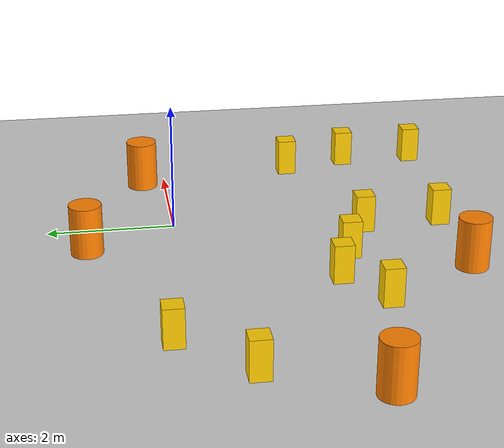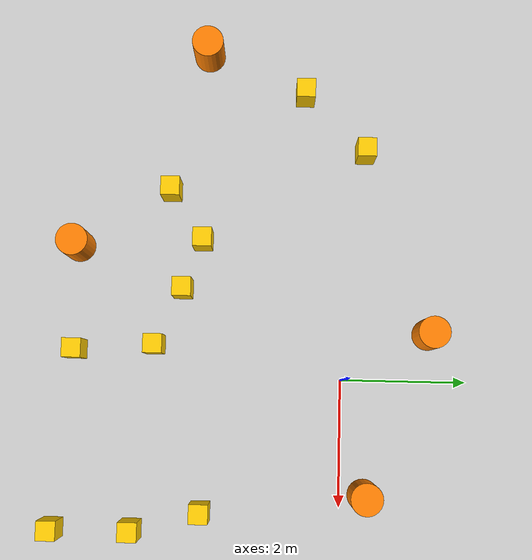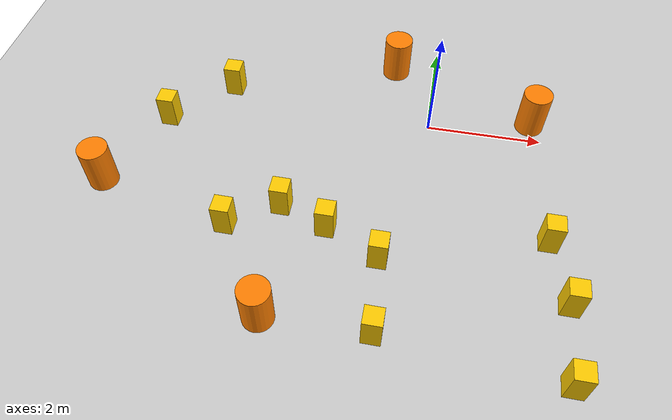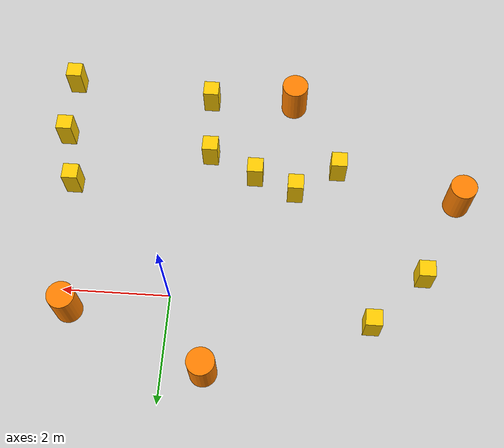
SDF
<sdf version='1.7'>
  <world name='default'>

    <plugin filename="gz-sim-physics-system" name="gz::sim::systems::Physics"/>
    <plugin filename="gz-sim-user-commands-system" name="gz::sim::systems::UserCommands"/>
    <plugin filename="gz-sim-scene-broadcaster-system" name="gz::sim::systems::SceneBroadcaster"/>
    <plugin filename="gz-sim-sensors-system" name="gz::sim::systems::Sensors">
      <render_engine>ogre2</render_engine>
    </plugin>

    <light name='sun' type='directional'>
      <cast_shadows>1</cast_shadows>
      <pose>0 0 10 0 0 0</pose>
      <diffuse>0.8 0.8 0.8 1</diffuse>
      <specular>0.2 0.2 0.2 1</specular>
      <attenuation>
        <range>1000</range>
        <constant>0.9</constant>
        <linear>0.01</linear>
        <quadratic>0.001</quadratic>
      </attenuation>
      <direction>-0.5 0.1 -0.9</direction>
    </light>

    <model name='ground_plane'>
      <static>1</static>
      <link name='link'>
        <collision name='collision'>
          <geometry>
            <plane>
              <normal>0 0 1</normal>
              <size>100 100</size>
            </plane>
          </geometry>
          <surface>
            <friction>
              <ode><mu>100</mu><mu2>50</mu2></ode>
            </friction>
          </surface>
        </collision>
        <visual name='visual'>
          <cast_shadows>0</cast_shadows>
          <geometry>
            <plane>
              <normal>0 0 1</normal>
              <size>100 100</size>
            </plane>
          </geometry>
          <material>
            <ambient>0.8 0.8 0.8 1</ambient>
            <diffuse>0.8 0.8 0.8 1</diffuse>
            <specular>0.0 0.0 0.0 1</specular>
          </material>
        </visual>
      </link>
    </model>

    <!-- Barrels as cylinders -->
    <model name='barrel_0'>
      <static>1</static>
      <pose>-0.756237 1.39226 0.4 0 0 0</pose>
      <link name='link'>
        <collision name='collision'>
          <geometry><cylinder><radius>0.25</radius><length>0.8</length></cylinder></geometry>
        </collision>
        <visual name='visual'>
          <geometry><cylinder><radius>0.25</radius><length>0.8</length></cylinder></geometry>
          <material><ambient>1 0.5 0 1</ambient><diffuse>1 0.5 0 1</diffuse></material>
        </visual>
      </link>
    </model>

    <model name='barrel_1'>
      <static>1</static>
      <pose>1.80022 0.377178 0.4 0 0 0</pose>
      <link name='link'>
        <collision name='collision'>
          <geometry><cylinder><radius>0.25</radius><length>0.8</length></cylinder></geometry>
        </collision>
        <visual name='visual'>
          <geometry><cylinder><radius>0.25</radius><length>0.8</length></cylinder></geometry>
          <material><ambient>1 0.5 0 1</ambient><diffuse>1 0.5 0 1</diffuse></material>
        </visual>
      </link>
    </model>

    <model name='barrel_2'>
      <static>1</static>
      <pose>-5.3108 -2.23708 0.4 0 0 0</pose>
      <link name='link'>
        <collision name='collision'>
          <geometry><cylinder><radius>0.25</radius><length>0.8</length></cylinder></geometry>
        </collision>
        <visual name='visual'>
          <geometry><cylinder><radius>0.25</radius><length>0.8</length></cylinder></geometry>
          <material><ambient>1 0.5 0 1</ambient><diffuse>1 0.5 0 1</diffuse></material>
        </visual>
      </link>
    </model>

    <model name='barrel_3'>
      <static>1</static>
      <pose>-2.07692 -4.26198 0.4 0 0 0</pose>
      <link name='link'>
        <collision name='collision'>
          <geometry><cylinder><radius>0.25</radius><length>0.8</length></cylinder></geometry>
        </collision>
        <visual name='visual'>
          <geometry><cylinder><radius>0.25</radius><length>0.8</length></cylinder></geometry>
          <material><ambient>1 0.5 0 1</ambient><diffuse>1 0.5 0 1</diffuse></material>
        </visual>
      </link>
    </model>

    <!-- Cones as small boxes -->
    <model name='cone_0'>
      <static>1</static>
      <pose>-2.19745 -2.25046 0.3 0 0 0</pose>
      <link name='link'>
        <collision name='collision'>
          <geometry><box><size>0.3 0.3 0.6</size></box></geometry>
        </collision>
        <visual name='visual'>
          <geometry><box><size>0.3 0.3 0.6</size></box></geometry>
          <material><ambient>1 0.8 0 1</ambient><diffuse>1 0.8 0 1</diffuse></material>
        </visual>
      </link>
    </model>

    <model name='cone_1'>
      <static>1</static>
      <pose>-1.40494 -2.55135 0.3 0 0 0</pose>
      <link name='link'>
        <collision name='collision'>
          <geometry><box><size>0.3 0.3 0.6</size></box></geometry>
        </collision>
        <visual name='visual'>
          <geometry><box><size>0.3 0.3 0.6</size></box></geometry>
          <material><ambient>1 0.8 0 1</ambient><diffuse>1 0.8 0 1</diffuse></material>
        </visual>
      </link>
    </model>

    <model name='cone_2'>
      <static>1</static>
      <pose>-0.501986 -2.9745 0.3 0 0 0</pose>
      <link name='link'>
        <collision name='collision'>
          <geometry><box><size>0.3 0.3 0.6</size></box></geometry>
        </collision>
        <visual name='visual'>
          <geometry><box><size>0.3 0.3 0.6</size></box></geometry>
          <material><ambient>1 0.8 0 1</ambient><diffuse>1 0.8 0 1</diffuse></material>
        </visual>
      </link>
    </model>

    <model name='cone_3'>
      <static>1</static>
      <pose>2.09724 -2.18232 0.3 0 0 0</pose>
      <link name='link'>
        <collision name='collision'>
          <geometry><box><size>0.3 0.3 0.6</size></box></geometry>
        </collision>
        <visual name='visual'>
          <geometry><box><size>0.3 0.3 0.6</size></box></geometry>
          <material><ambient>1 0.8 0 1</ambient><diffuse>1 0.8 0 1</diffuse></material>
        </visual>
      </link>
    </model>

    <model name='cone_4'>
      <static>1</static>
      <pose>-3.69879 0.345038 0.3 0 0 0</pose>
      <link name='link'>
        <collision name='collision'>
          <geometry><box><size>0.3 0.3 0.6</size></box></geometry>
        </collision>
        <visual name='visual'>
          <geometry><box><size>0.3 0.3 0.6</size></box></geometry>
          <material><ambient>1 0.8 0 1</ambient><diffuse>1 0.8 0 1</diffuse></material>
        </visual>
      </link>
    </model>

    <model name='cone_5'>
      <static>1</static>
      <pose>-0.406438 -4.23374 0.3 0 0 0</pose>
      <link name='link'>
        <collision name='collision'>
          <geometry><box><size>0.3 0.3 0.6</size></box></geometry>
        </collision>
        <visual name='visual'>
          <geometry><box><size>0.3 0.3 0.6</size></box></geometry>
          <material><ambient>1 0.8 0 1</ambient><diffuse>1 0.8 0 1</diffuse></material>
        </visual>
      </link>
    </model>

    <model name='cone_6'>
      <static>1</static>
      <pose>2.38815 -3.2576 0.3 0 0 0</pose>
      <link name='link'>
        <collision name='collision'>
          <geometry><box><size>0.3 0.3 0.6</size></box></geometry>
        </collision>
        <visual name='visual'>
          <geometry><box><size>0.3 0.3 0.6</size></box></geometry>
          <material><ambient>1 0.8 0 1</ambient><diffuse>1 0.8 0 1</diffuse></material>
        </visual>
      </link>
    </model>

    <model name='cone_7'>
      <static>1</static>
      <pose>2.39316 -4.49605 0.3 0 0 0</pose>
      <link name='link'>
        <collision name='collision'>
          <geometry><box><size>0.3 0.3 0.6</size></box></geometry>
        </collision>
        <visual name='visual'>
          <geometry><box><size>0.3 0.3 0.6</size></box></geometry>
          <material><ambient>1 0.8 0 1</ambient><diffuse>1 0.8 0 1</diffuse></material>
        </visual>
      </link>
    </model>

    <model name='cone_8'>
      <static>1</static>
      <pose>-3.00495 -2.78053 0.3 0 0 0</pose>
      <link name='link'>
        <collision name='collision'>
          <geometry><box><size>0.3 0.3 0.6</size></box></geometry>
        </collision>
        <visual name='visual'>
          <geometry><box><size>0.3 0.3 0.6</size></box></geometry>
          <material><ambient>1 0.8 0 1</ambient><diffuse>1 0.8 0 1</diffuse></material>
        </visual>
      </link>
    </model>

    <model name='cone_9'>
      <static>1</static>
      <pose>-4.64786 -0.646522 0.3 0 0 0</pose>
      <link name='link'>
        <collision name='collision'>
          <geometry><box><size>0.3 0.3 0.6</size></box></geometry>
        </collision>
        <visual name='visual'>
          <geometry><box><size>0.3 0.3 0.6</size></box></geometry>
          <material><ambient>1 0.8 0 1</ambient><diffuse>1 0.8 0 1</diffuse></material>
        </visual>
      </link>
    </model>

    <gravity>0 0 -9.8</gravity>
    <atmosphere type='adiabatic'/>
    <physics type='ode'>
      <max_step_size>0.001</max_step_size>
      <real_time_factor>1</real_time_factor>
      <real_time_update_rate>1000</real_time_update_rate>
    </physics>
    <scene>
      <ambient>0.4 0.4 0.4 1</ambient>
      <background>0.7 0.7 0.7 1</background>
      <shadows>1</shadows>
    </scene>

  </world>
</sdf>
